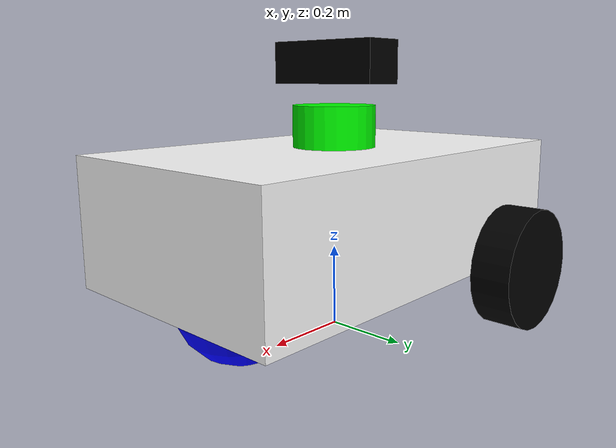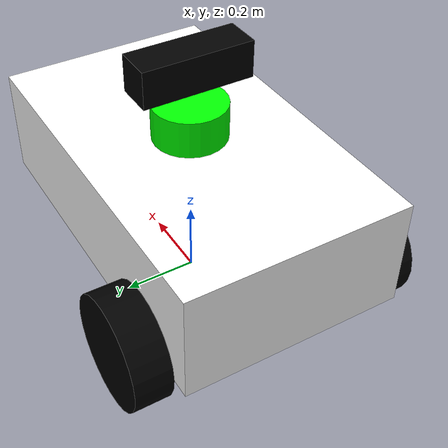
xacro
<?xml version="1.0"?>
<robot xmlns:xacro="http://www.ros.org/wiki/xacro" >

    <!--                        Geometry & Constants                    -->

    <!-- Pi Constant -->
    <xacro:property name="pi_const" value="3.14159265" />

    <!-- Body Dimensions -->
    <xacro:property name="a" value="1.0"/>
    <xacro:property name="b" value="0.3"/>
    <xacro:property name="c" value="0.6"/>

    <!-- Wheel Dimension -->
    <xacro:property name="r" value="0.15"/>
    <xacro:property name="d" value="0.1"/>

    <!-- Caster Dimension -->

    <!-- Distance btw Centers -->
    <xacro:property name="s1" value="${b/2+r}"/>
    <xacro:property name="s2" value="${2*r}"/>
    <xacro:property name="s3" value="${2*r}"/>
    <xacro:property name="s4" value="${c/2+d/2}"/>

    <!-- Material Density -->
    <xacro:property name="d1" value="2710.0"/>
    <xacro:property name="d2" value="2710.0"/>
    <xacro:property name="d3" value="2710.0"/>

    <!-- Wheelchair Mass -->
    <xacro:property name="m1" value="${d1*a*c*b}"/>
    <xacro:property name="m2" value="${d2*pi_const*r*r*d}"/>
    <xacro:property name="m3" value="${d3*(4.0/3.0)*pi_const*r*r*r}"/>

    <!-- Moment of Inertia of Body -->
    <xacro:property name="Ix_body" value="${(1/12)*m1*(b*b+c*c)}"/>
    <xacro:property name="Iy_body" value="${(1/12)*m1*(a*a+b*b)}"/>
    <xacro:property name="Iz_body" value="${(1/12)*m1*(a*a+c*c)}"/>

    <!-- Moment of Inertia of Wheel -->
    <xacro:property name="I_wheel" value="${(1.0/12.0)*m2*(3.0*r*r+d*d)}"/>
    <xacro:property name="Iz_wheel" value="${0.5*m2*r*r}"/>

    <!-- Moment of Inertia of Caster -->
    <xacro:property name="I_caster" value="${(2.0/5.0)*m3*r*r}"/>

    <!-- Macro for Inertial Section -->
    <xacro:macro name="inertia_body">
        <!-- displacement & rientation of center of mass frame of link to ground -->
        <inertial>
            <origin xyz="0 0 ${s1}" rpy="0 0 0"/>
            <mass value="${m1}"/>
            <inertia ixx="${Ix_body}" ixy="0.0" ixz="0.0"
                     iyy="${Iy_body}" iyz="0.0"
                     izz="${Iz_body}"/>
        </inertial>
    </xacro:macro>

    <xacro:macro name="inertia_wheel">
        <inertial>
            <origin xyz="0 0 0" rpy="1.570795 0 0"/>
            <mass value="${m2}"/>
            <inertia ixx="${I_wheel}" ixy="0.0" ixz="0.0"
                     iyy="${I_wheel}" iyz="0.0"
                     izz="${Iz_wheel}"/>
        </inertial>
    </xacro:macro>

    <xacro:macro name="inertia_caster">
        <inertial>
            <origin xyz="0 0 0" rpy="0 0 0"/>
            <mass value="${m3}"/>
            <inertia ixx="${I_caster}" ixy="0.0" ixz="0.0"
                     iyy="${I_caster}" iyz="0.0"
                     izz="${I_caster}"/>
        </inertial>
    </xacro:macro>

    <!-- Additional Files -->
    <xacro:include filename="$(find wheelchair_one)/description/gazebo_control_test"/>

    <!-- colors -->
    <material name="blue">
        <color rgba="0 0 1 1"/>
    </material>

    <material name="red">
        <color rgba="0 1 0 1"/>
    </material>

    <material name="grey">
        <color rgba="1 1 1 1"/>
    </material>

    <material name="light_grey">
        <color rgba="0.5 0.5 0.5 0.5"/>
    </material>

    <material name="black">
        <color rgba="0 0 0 1"/>
    </material>

    <!--                            Links & Joints                      -->
    <!-- Base Link-->
    <joint name="base_link_joint" type="fixed">
        <parent link="base_link"/>
        <child link="chassis"/>
        <origin xyz="0 0 0" rpy="0 0 0"/>
    </joint>

    <link name="base_link"></link>

    <!-- Base_Footprint Link -->

    <!-- Chassis-->

    <link name="chassis">
        <visual>
            <origin xyz="0 0 ${s1}" rpy="0 0 0"/>
            <geometry>
                <box size="${a} ${c} ${b}"/>
            </geometry>
            <material name="grey"/>
        </visual>

        <collision>
            <origin xyz="0 0 ${s1}" rpy="0 0 0"/>
            <geometry>
                <box size="${a} ${c} ${b}"/>
            </geometry>
        </collision>

        <xacro:inertia_body/>
    </link>

    <!-- LEFT WHEEL LINK -->
    <joint name="left_wheel_joint" type="continuous">
        <parent link="chassis"/>
        <child link="left_wheel"/>
        <origin xyz="${-s2} ${-s4} ${r}" rpy="0 0 0" />
        <axis xyz="0 1 0"/>
        <limit effort="50000" velocity="10"/>
        <dynamic damping="1.0" friction="1.0"/>
    </joint>

    <link name="left_wheel">
        <visual>
            <origin xyz="0 0 0" rpy="1.570795 0 0"/>
            <geometry>
                <cylinder radius="${r}" length="${d}"/>
            </geometry>
            <material name="black"/>
        </visual>

        <collision>
            <origin xyz="0 0 0" rpy="1.570795 0 0"/>
            <geometry>
                <cylinder radius="${r}" length="${d}"/>
            </geometry>
        </collision>

        <xacro:inertia_wheel/>
    </link>

    <!-- RIGHT WHEEL LINK -->
    <joint name="right_wheel_joint" type="continuous">
        <parent link="chassis"/>
        <child link="right_wheel"/>
        <origin xyz="${-s2} ${s4} ${r}" rpy="0 0 0" />
        <axis xyz="0 1 0"/>
        <limit effort="50000" velocity="10"/>
        <dynamic damping="1.0" friction="1.0"/>
    </joint>

    <link name="right_wheel">
        <visual>
            <origin xyz="0 0 0" rpy="1.570795 0 0"/>
            <geometry>
                <cylinder radius="${r}" length="${d}"/>
            </geometry>
            <material name="black"/>
        </visual>
        <collision>
            <origin xyz="0 0 0" rpy="1.570795 0 0"/>
            <geometry>
                <cylinder radius="${r}" length="${d}"/>
            </geometry>
        </collision>

        <xacro:inertia_wheel/>
    </link>

    <!-- CASTER WHEEL LINK -->
    <joint name="caster_joint" type="continuous">
        <parent link="chassis"/>
        <child link="caster"/>
        <origin xyz="${s3} 0 ${r}" rpy="0 0 0" />
    </joint>

    <link name="caster">
        <visual>
            <origin xyz="0 0 0" rpy="0 0 0"/>
            <geometry>
                <sphere radius="${r}"/>
            </geometry>
            <material name="blue"/>
        </visual>

        <collision>
            <origin xyz="0 0 0" rpy="0 0 0"/>
            <geometry>
                <sphere radius="${r}"/>
            </geometry>
        </collision>

        <xacro:inertia_caster/>
    </link>

    <!-- CASTER RIGHT WHEEL LINK -->

    <!--                            LiDAR                               -->
    <joint name="lidar_joint" type="fixed">
        <origin xyz="0 0 ${b+r}" rpy="0 0 0"/>
        <parent link="chassis"/>
        <child link="lidar"/>
        <axis xyz="0 1 0"/>
    </joint>

    <link name="lidar">
        <visual>
            <origin xyz="0 0 0.05" rpy="0 0 0"/>
            <geometry>
                <cylinder length="0.1" radius="0.1"/>
            </geometry>
            <material name="red"/>
        </visual>

        <collision name='collision'>
            <origin xyz="0 0 0.05" rpy="0 0 0"/>
            <geometry>
                <cylinder length="0.1" radius="0.1"/>
            </geometry>
        </collision>

        <inertial>
            <mass value="1e-6"/>
            <origin xyz="0 0 0" rpy="0 0 0"/>
            <inertia ixx="1e-6" ixy="0" ixz="0"
                     iyy="1e-6" iyz="0" izz="1e-6"/>
        </inertial>
    </link>

    <!--                         Depth Camera                           -->
    <joint name="camera_joint" type="fixed">
        <parent link="chassis"/>
        <child link="camera"/>
        <origin xyz="0 0 ${b+r+0.2}" rpy="0 0 0"/>
    </joint>

    <link name="camera">
        <visual>
            <geometry>
                <box size="0.1 0.3 0.1"/>
            </geometry>
            <material name="black"/>
        </visual>

        <collision>
            <geometry>
                <box size="0.1 0.3 0.1"/>
            </geometry>
        </collision>

        <inertial>
            <mass value="0.1"/>
            <origin xyz="0 0 0" rpy="0 0 0"/>
            <inertia ixx="0.000166667" ixy="0" ixz="0"
                     iyy="0.000166667" iyz="0" izz="0.000166667"/>
        </inertial>
    </link>

    <joint name="camera_optical_joint" type="fixed">
        <parent link="camera"/>
        <child link="camera_optical"/>
        <origin xyz="0 0 0" rpy="${-pi/2} 0 ${-pi/2}"/>
    </joint>

    <link name="camera_optical"/>

</robot>
